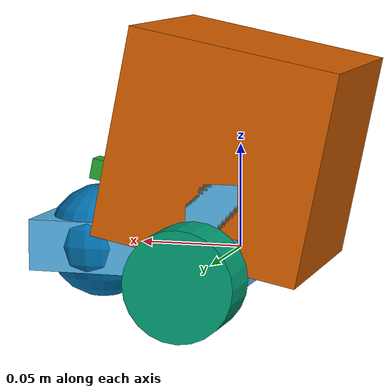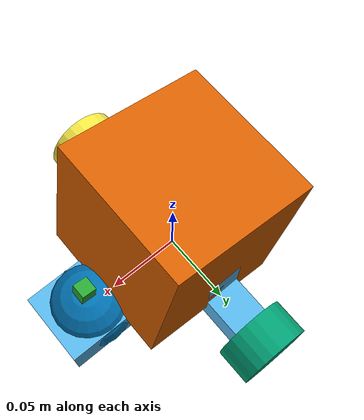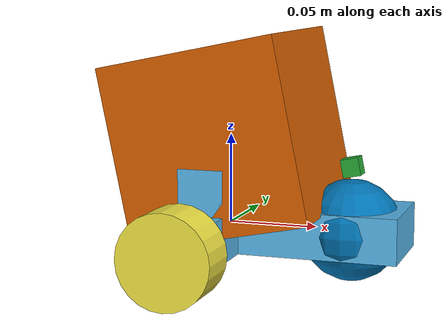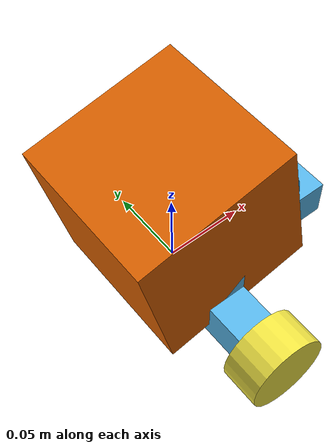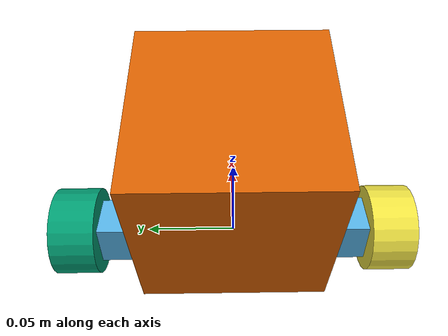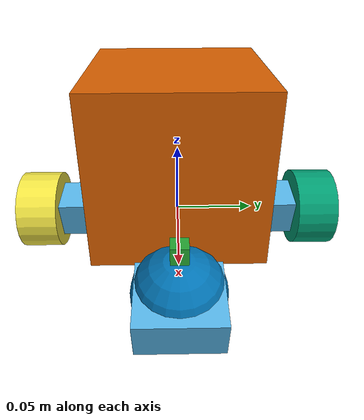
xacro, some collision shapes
<?xml version='1.0'?>

<robot name="marvin_bot" xmlns:xacro="http://www.ros.org/wiki/xacro">
	<xacro:include filename="$(find rover_platform)/urdf/marvin_bot.gazebo" />

	<link name="robot_footprint"></link>

	<joint name="robot_footprint_joint" type="fixed">
		<origin xyz="0 0 0" rpy="0 0 0" />
	    	<parent link="robot_footprint"/>
	   	<child link="chassis" />
	</joint>

	<link name="chassis">
		<pose>0 0 0 0 0 0</pose>
		<inertial>
			<mass value="10.0"/>
			<origin xyz="0 0 0" rpy="0 0 0"/>
			<inertia
          			ixx="0.1" ixy="0" ixz="0"
          			iyy="0.1" iyz="0"
          			izz="0.1"
      			/>
		</inertial>

		<collision name="rear_collision">
			<origin xyz="0 0 0" rpy="0 0 0" />
			<geometry>
				<box size=".025 .18 .025" />
			</geometry>
		</collision>

		<visual name="rear_visual">
			<origin xyz="0 0 0" rpy="0 0 0" />
			<geometry>
				<box size=".025 .18 .025" />
			</geometry>
		</visual>

		<collision name="rear_platform_collision">
			<origin xyz="0 0 0.025" rpy="0 0 0" />
			<geometry>
				<box size=".025 .1 .025" />
			</geometry>
		</collision>

		<visual name="rear_platform_visual">
			<origin xyz="0 0 0.025" rpy="0 0 0" />
			<geometry>
				<box size="0.025 .1 .025" />
			</geometry>
		</visual>

		<collision name="front_platform_collision">
			<origin xyz="0.05 0 0" rpy="0 0 0" />
			<geometry>
				<box size=".1 .05 .025" />
			</geometry>
		</collision>

		<visual name="front_platform_visual">
			<origin xyz="0.05 0 0" rpy="0 0 0" />
			<geometry>
				<box size=".1 .05 .025" />
			</geometry>
		</visual>
	</link>

	<link name="left_wheel">
		<pose>0 0 0 0 1.5707 1.5707</pose>

		<inertial>
			<mass value="10.0"/>
			<origin xyz="0 0 0" rpy="0 0 0"/>
			<inertia
          			ixx="0.1" ixy="0" ixz="0"
          			iyy="0.1" iyz="0"
          			izz="0.1"
      			/>
		</inertial>

		<collision>
			<origin xyz="0 0 0" rpy="0 1.5707 1.5707" />
			<geometry>
				<cylinder radius="0.025" length="0.025" />
			</geometry>
		</collision>

		<visual>
			<origin xyz="0 0 0" rpy="0 1.5707 1.5707" />
			<geometry>
				<cylinder radius="0.025" length="0.025" />
			</geometry>
		</visual>
	</link>

	<joint name="left_wheel_hinge" type="continuous">
		<origin xyz="0 0.09 0" rpy="0 0 0"/>
		<child link="left_wheel" />
		<parent link="chassis"/>
		<axis xyz="0 1 0" rpy="0 0 0"/>
		<limit effort="10000" velocity="1000"/>
		<joint_properties damping="1.0" friction="1.0"/>
	</joint>

	<link name="right_wheel">
		<pose>0 0 0 0 1.5707 1.5707</pose>

		<inertial>
			<mass value="10.0"/>
			<origin xyz="0 0 0" rpy="0 0 0"/>
			<inertia
          			ixx="0.1" ixy="0" ixz="0"
          			iyy="0.1" iyz="0"
          			izz="0.1"
      			/>
		</inertial>

		<collision>
			<origin xyz="0 0 0" rpy="0 1.5707 1.5707" />
			<geometry>
				<cylinder radius="0.025" length="0.025" />
			</geometry>
		</collision>

		<visual>
			<origin xyz="0 0 0" rpy="0 1.5707 1.5707" />
			<geometry>
				<cylinder radius="0.025" length="0.025" />
			</geometry>
		</visual>
	</link>

	<joint name="right_wheel_hinge" type="continuous">
		<origin xyz="0 -0.09 0" rpy="0 0 0"/>
		<child link="right_wheel" />
		<parent link="chassis"/>
		<axis xyz="0 1 0" rpy="0 0 0"/>
		<limit effort="10000" velocity="1000"/>
		<joint_properties damping="1.0" friction="1.0"/>
	</joint>

	<link name="counterbalance">
		<pose>0 0 0 0 0 0</pose>
		<inertial>
			<mass value="10.0"/>
			<origin xyz="0 0 0" rpy="0 0 0"/>
			<inertia
          			ixx="0.1" ixy="0" ixz="0"
          			iyy="0.1" iyz="0"
          			izz="0.1"
      			/>
		</inertial>

		<collision>
			<origin xyz="0 0 0" rpy="0 0 0" />
			<geometry>
				<box size=".01 .01 .01" />
			</geometry>
			<surface>
				<friction>
				  <ode>
				    <mu>0</mu>
				    <mu2>0</mu2>
				    <slip1>1.0</slip1>
				    <slip2>1.0</slip2>
				  </ode>
				</friction>
			 </surface>
		</collision>

		<visual>
			<origin xyz="0 0 0" rpy="0 0 0" />
			<geometry>
				<sphere radius="0.028" />
			</geometry>
		</visual>
	</link>

	<joint name="counterbalance_joint" type="fixed">
		<origin xyz="0.07 0 0" rpy="0 0 0" />
	    	<parent link="chassis"/>
	   	<child link="counterbalance" />
	</joint>

	<link name="hokuyo">
	    <pose>0 0 0 0 0 0</pose>
	    <inertial>
	       <mass value="0.1"/>
	       <origin xyz="0 0 0" rpy="0 0 0"/>
	       <inertia
		 ixx="1e-6" ixy="0" ixz="0"
		 iyy="1e-6" iyz="0"
		 izz="1e-6"
		/>
	    </inertial>

	    <collision>
	       <origin xyz="0 0 0" rpy="0 0 0"/>
	       <geometry>
		  <box size="0.1 0.1 0.1" />
	       </geometry>
	    </collision>

	    <visual>
	       <origin xyz="0 0 0" rpy="0 0 0"/>
	       <geometry>
		  <mesh filename="package://rover_platform/meshes/hokuyo.dae"/>
	       </geometry>
	    </visual>
	  </link>

	  <joint type="fixed" name="hokuyo_joint">
	    <origin xyz="0.0 0 0.05" rpy="0 -0.2 0"/>
	    <child link="hokuyo"/>
	    <parent link="chassis"/>
	    <axis xyz="0 1 0" rpy="0 0 0"/>
	    <limit effort="10000" velocity="1000"/>
	    <joint_properties damping="1.0" friction="1.0"/>
	  </joint>

	  <link name="camera">
	    <pose>0 0 0 0 0 0</pose>
	    <inertial>
	       <mass value="0.1"/>
	       <origin xyz="0 0 0" rpy="0 0 0"/>
	       <inertia
		 ixx="1e-6" ixy="0" ixz="0"
		 iyy="1e-6" iyz="0"
		 izz="1e-6"
		/>
	    </inertial>

	    <collision>
	       <origin xyz="0 0 0" rpy="0 0 0"/>
	       <geometry>
		  <box size="0.01 0.01 0.01" />
	       </geometry>
	    </collision>

	    <visual>
	       <origin xyz="0 0 0" rpy="0 0 0"/>
	       <geometry>
		  <box size="0.01 0.01 0.01" />
	       </geometry>
	    </visual>

	  </link>

   <link name="camera_frame">
		 <pose>0 0 0 0 0 0</pose>
	 </link>

	  <joint type="fixed" name="camera_joint">
	    <origin xyz="0.07 0 0.035" rpy="0 -0.2 0"/>
	    <child link="camera"/>
	    <parent link="chassis"/>
	    <axis xyz="0 1 0" rpy="0 0 0"/>
	    <limit effort="10000" velocity="1000"/>
	    <joint_properties damping="1.0" friction="1.0"/>
	  </joint>

		<joint type="fixed" name="camera_frame_joint">
			<origin xyz="0.07 0 0.035" rpy="-1.57 0 -1.57"/>
			<child link="camera_frame"/>
			<parent link="camera"/>
			<axis xyz="1 0 0" rpy="0 0 0"/>
			<limit effort="10000" velocity="1000"/>
			<joint_properties damping="1.0" friction="1.0"/>
		</joint>

</robot>
